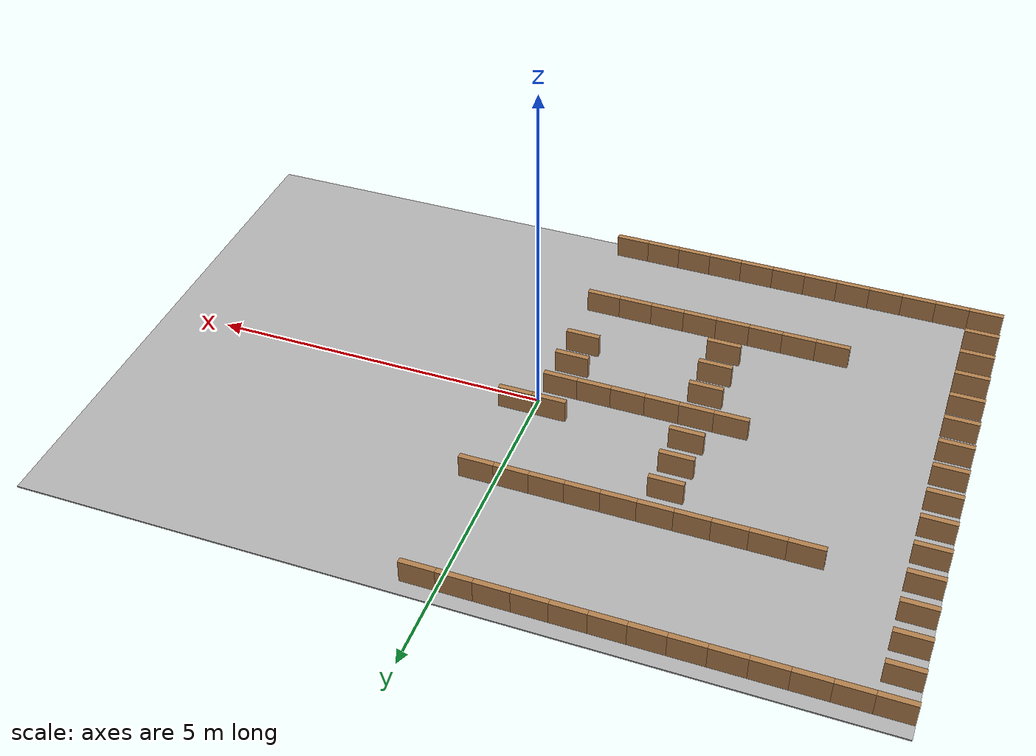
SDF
<sdf version="1.7">
 <world name="default">
  <model name="floor">
   <pose>0 0 -0.01 0 0 0</pose>
   <static>true</static>
   <link name="link">
    <collision name="col"><geometry><box><size>12.0 8.0 0.02</size></box></geometry></collision>
    <visual name="vis">
     <geometry><box><size>12.0 8.0 0.02</size></box></geometry>
     <material>
      <ambient>0.3 0.3 0.3 1</ambient>
      <diffuse>0.7 0.7 0.7 1</diffuse>
      <specular>0.1 0.1 0.1 1</specular>
     </material>
    </visual>
   </link>
  </model>
  <model name="wall_r0_c0">
   <pose>-5.75 3.75 0.175 0 0 0</pose>
   <static>true</static>
   <link name="link">
    <collision name="col"><geometry><box><size>0.5 0.08 0.35</size></box></geometry></collision>
    <visual name="vis">
     <geometry><box><size>0.5 0.08 0.35</size></box></geometry>
     <material>
      <ambient>0.3 0.2 0.1 1</ambient>
      <diffuse>0.7 0.5 0.3 1</diffuse>
      <specular>0.1 0.1 0.1 1</specular>
     </material>
    </visual>
   </link>
  </model>
  <model name="wall_r0_c1">
   <pose>-5.25 3.75 0.175 0 0 0</pose>
   <static>true</static>
   <link name="link">
    <collision name="col"><geometry><box><size>0.5 0.08 0.35</size></box></geometry></collision>
    <visual name="vis">
     <geometry><box><size>0.5 0.08 0.35</size></box></geometry>
     <material>
      <ambient>0.3 0.2 0.1 1</ambient>
      <diffuse>0.7 0.5 0.3 1</diffuse>
      <specular>0.1 0.1 0.1 1</specular>
     </material>
    </visual>
   </link>
  </model>
  <model name="wall_r0_c2">
   <pose>-4.75 3.75 0.175 0 0 0</pose>
   <static>true</static>
   <link name="link">
    <collision name="col"><geometry><box><size>0.5 0.08 0.35</size></box></geometry></collision>
    <visual name="vis">
     <geometry><box><size>0.5 0.08 0.35</size></box></geometry>
     <material>
      <ambient>0.3 0.2 0.1 1</ambient>
      <diffuse>0.7 0.5 0.3 1</diffuse>
      <specular>0.1 0.1 0.1 1</specular>
     </material>
    </visual>
   </link>
  </model>
  <model name="wall_r0_c3">
   <pose>-4.25 3.75 0.175 0 0 0</pose>
   <static>true</static>
   <link name="link">
    <collision name="col"><geometry><box><size>0.5 0.08 0.35</size></box></geometry></collision>
    <visual name="vis">
     <geometry><box><size>0.5 0.08 0.35</size></box></geometry>
     <material>
      <ambient>0.3 0.2 0.1 1</ambient>
      <diffuse>0.7 0.5 0.3 1</diffuse>
      <specular>0.1 0.1 0.1 1</specular>
     </material>
    </visual>
   </link>
  </model>
  <model name="wall_r0_c4">
   <pose>-3.75 3.75 0.175 0 0 0</pose>
   <static>true</static>
   <link name="link">
    <collision name="col"><geometry><box><size>0.5 0.08 0.35</size></box></geometry></collision>
    <visual name="vis">
     <geometry><box><size>0.5 0.08 0.35</size></box></geometry>
     <material>
      <ambient>0.3 0.2 0.1 1</ambient>
      <diffuse>0.7 0.5 0.3 1</diffuse>
      <specular>0.1 0.1 0.1 1</specular>
     </material>
    </visual>
   </link>
  </model>
  <model name="wall_r0_c5">
   <pose>-3.25 3.75 0.175 0 0 0</pose>
   <static>true</static>
   <link name="link">
    <collision name="col"><geometry><box><size>0.5 0.08 0.35</size></box></geometry></collision>
    <visual name="vis">
     <geometry><box><size>0.5 0.08 0.35</size></box></geometry>
     <material>
      <ambient>0.3 0.2 0.1 1</ambient>
      <diffuse>0.7 0.5 0.3 1</diffuse>
      <specular>0.1 0.1 0.1 1</specular>
     </material>
    </visual>
   </link>
  </model>
  <model name="wall_r0_c6">
   <pose>-2.75 3.75 0.175 0 0 0</pose>
   <static>true</static>
   <link name="link">
    <collision name="col"><geometry><box><size>0.5 0.08 0.35</size></box></geometry></collision>
    <visual name="vis">
     <geometry><box><size>0.5 0.08 0.35</size></box></geometry>
     <material>
      <ambient>0.3 0.2 0.1 1</ambient>
      <diffuse>0.7 0.5 0.3 1</diffuse>
      <specular>0.1 0.1 0.1 1</specular>
     </material>
    </visual>
   </link>
  </model>
  <model name="wall_r0_c7">
   <pose>-2.25 3.75 0.175 0 0 0</pose>
   <static>true</static>
   <link name="link">
    <collision name="col"><geometry><box><size>0.5 0.08 0.35</size></box></geometry></collision>
    <visual name="vis">
     <geometry><box><size>0.5 0.08 0.35</size></box></geometry>
     <material>
      <ambient>0.3 0.2 0.1 1</ambient>
      <diffuse>0.7 0.5 0.3 1</diffuse>
      <specular>0.1 0.1 0.1 1</specular>
     </material>
    </visual>
   </link>
  </model>
  <model name="wall_r0_c8">
   <pose>-1.75 3.75 0.175 0 0 0</pose>
   <static>true</static>
   <link name="link">
    <collision name="col"><geometry><box><size>0.5 0.08 0.35</size></box></geometry></collision>
    <visual name="vis">
     <geometry><box><size>0.5 0.08 0.35</size></box></geometry>
     <material>
      <ambient>0.3 0.2 0.1 1</ambient>
      <diffuse>0.7 0.5 0.3 1</diffuse>
      <specular>0.1 0.1 0.1 1</specular>
     </material>
    </visual>
   </link>
  </model>
  <model name="wall_r0_c9">
   <pose>-1.25 3.75 0.175 0 0 0</pose>
   <static>true</static>
   <link name="link">
    <collision name="col"><geometry><box><size>0.5 0.08 0.35</size></box></geometry></collision>
    <visual name="vis">
     <geometry><box><size>0.5 0.08 0.35</size></box></geometry>
     <material>
      <ambient>0.3 0.2 0.1 1</ambient>
      <diffuse>0.7 0.5 0.3 1</diffuse>
      <specular>0.1 0.1 0.1 1</specular>
     </material>
    </visual>
   </link>
  </model>
  <model name="wall_r0_c10">
   <pose>-0.75 3.75 0.175 0 0 0</pose>
   <static>true</static>
   <link name="link">
    <collision name="col"><geometry><box><size>0.5 0.08 0.35</size></box></geometry></collision>
    <visual name="vis">
     <geometry><box><size>0.5 0.08 0.35</size></box></geometry>
     <material>
      <ambient>0.3 0.2 0.1 1</ambient>
      <diffuse>0.7 0.5 0.3 1</diffuse>
      <specular>0.1 0.1 0.1 1</specular>
     </material>
    </visual>
   </link>
  </model>
  <model name="wall_r0_c11">
   <pose>-0.25 3.75 0.175 0 0 0</pose>
   <static>true</static>
   <link name="link">
    <collision name="col"><geometry><box><size>0.5 0.08 0.35</size></box></geometry></collision>
    <visual name="vis">
     <geometry><box><size>0.5 0.08 0.35</size></box></geometry>
     <material>
      <ambient>0.3 0.2 0.1 1</ambient>
      <diffuse>0.7 0.5 0.3 1</diffuse>
      <specular>0.1 0.1 0.1 1</specular>
     </material>
    </visual>
   </link>
  </model>
  <model name="wall_r0_c12">
   <pose>0.25 3.75 0.175 0 0 0</pose>
   <static>true</static>
   <link name="link">
    <collision name="col"><geometry><box><size>0.5 0.08 0.35</size></box></geometry></collision>
    <visual name="vis">
     <geometry><box><size>0.5 0.08 0.35</size></box></geometry>
     <material>
      <ambient>0.3 0.2 0.1 1</ambient>
      <diffuse>0.7 0.5 0.3 1</diffuse>
      <specular>0.1 0.1 0.1 1</specular>
     </material>
    </visual>
   </link>
  </model>
  <model name="wall_r1_c0">
   <pose>-5.75 3.25 0.175 0 0 0</pose>
   <static>true</static>
   <link name="link">
    <collision name="col"><geometry><box><size>0.5 0.08 0.35</size></box></geometry></collision>
    <visual name="vis">
     <geometry><box><size>0.5 0.08 0.35</size></box></geometry>
     <material>
      <ambient>0.3 0.2 0.1 1</ambient>
      <diffuse>0.7 0.5 0.3 1</diffuse>
      <specular>0.1 0.1 0.1 1</specular>
     </material>
    </visual>
   </link>
  </model>
  <model name="wall_r2_c0">
   <pose>-5.75 2.75 0.175 0 0 0</pose>
   <static>true</static>
   <link name="link">
    <collision name="col"><geometry><box><size>0.5 0.08 0.35</size></box></geometry></collision>
    <visual name="vis">
     <geometry><box><size>0.5 0.08 0.35</size></box></geometry>
     <material>
      <ambient>0.3 0.2 0.1 1</ambient>
      <diffuse>0.7 0.5 0.3 1</diffuse>
      <specular>0.1 0.1 0.1 1</specular>
     </material>
    </visual>
   </link>
  </model>
  <model name="wall_r3_c0">
   <pose>-5.75 2.25 0.175 0 0 0</pose>
   <static>true</static>
   <link name="link">
    <collision name="col"><geometry><box><size>0.5 0.08 0.35</size></box></geometry></collision>
    <visual name="vis">
     <geometry><box><size>0.5 0.08 0.35</size></box></geometry>
     <material>
      <ambient>0.3 0.2 0.1 1</ambient>
      <diffuse>0.7 0.5 0.3 1</diffuse>
      <specular>0.1 0.1 0.1 1</specular>
     </material>
    </visual>
   </link>
  </model>
  <model name="wall_r4_c0">
   <pose>-5.75 1.75 0.175 0 0 0</pose>
   <static>true</static>
   <link name="link">
    <collision name="col"><geometry><box><size>0.5 0.08 0.35</size></box></geometry></collision>
    <visual name="vis">
     <geometry><box><size>0.5 0.08 0.35</size></box></geometry>
     <material>
      <ambient>0.3 0.2 0.1 1</ambient>
      <diffuse>0.7 0.5 0.3 1</diffuse>
      <specular>0.1 0.1 0.1 1</specular>
     </material>
    </visual>
   </link>
  </model>
  <model name="wall_r4_c3">
   <pose>-4.25 1.75 0.175 0 0 0</pose>
   <static>true</static>
   <link name="link">
    <collision name="col"><geometry><box><size>0.5 0.08 0.35</size></box></geometry></collision>
    <visual name="vis">
     <geometry><box><size>0.5 0.08 0.35</size></box></geometry>
     <material>
      <ambient>0.3 0.2 0.1 1</ambient>
      <diffuse>0.7 0.5 0.3 1</diffuse>
      <specular>0.1 0.1 0.1 1</specular>
     </material>
    </visual>
   </link>
  </model>
  <model name="wall_r4_c4">
   <pose>-3.75 1.75 0.175 0 0 0</pose>
   <static>true</static>
   <link name="link">
    <collision name="col"><geometry><box><size>0.5 0.08 0.35</size></box></geometry></collision>
    <visual name="vis">
     <geometry><box><size>0.5 0.08 0.35</size></box></geometry>
     <material>
      <ambient>0.3 0.2 0.1 1</ambient>
      <diffuse>0.7 0.5 0.3 1</diffuse>
      <specular>0.1 0.1 0.1 1</specular>
     </material>
    </visual>
   </link>
  </model>
  <model name="wall_r4_c5">
   <pose>-3.25 1.75 0.175 0 0 0</pose>
   <static>true</static>
   <link name="link">
    <collision name="col"><geometry><box><size>0.5 0.08 0.35</size></box></geometry></collision>
    <visual name="vis">
     <geometry><box><size>0.5 0.08 0.35</size></box></geometry>
     <material>
      <ambient>0.3 0.2 0.1 1</ambient>
      <diffuse>0.7 0.5 0.3 1</diffuse>
      <specular>0.1 0.1 0.1 1</specular>
     </material>
    </visual>
   </link>
  </model>
  <model name="wall_r4_c6">
   <pose>-2.75 1.75 0.175 0 0 0</pose>
   <static>true</static>
   <link name="link">
    <collision name="col"><geometry><box><size>0.5 0.08 0.35</size></box></geometry></collision>
    <visual name="vis">
     <geometry><box><size>0.5 0.08 0.35</size></box></geometry>
     <material>
      <ambient>0.3 0.2 0.1 1</ambient>
      <diffuse>0.7 0.5 0.3 1</diffuse>
      <specular>0.1 0.1 0.1 1</specular>
     </material>
    </visual>
   </link>
  </model>
  <model name="wall_r4_c7">
   <pose>-2.25 1.75 0.175 0 0 0</pose>
   <static>true</static>
   <link name="link">
    <collision name="col"><geometry><box><size>0.5 0.08 0.35</size></box></geometry></collision>
    <visual name="vis">
     <geometry><box><size>0.5 0.08 0.35</size></box></geometry>
     <material>
      <ambient>0.3 0.2 0.1 1</ambient>
      <diffuse>0.7 0.5 0.3 1</diffuse>
      <specular>0.1 0.1 0.1 1</specular>
     </material>
    </visual>
   </link>
  </model>
  <model name="wall_r4_c8">
   <pose>-1.75 1.75 0.175 0 0 0</pose>
   <static>true</static>
   <link name="link">
    <collision name="col"><geometry><box><size>0.5 0.08 0.35</size></box></geometry></collision>
    <visual name="vis">
     <geometry><box><size>0.5 0.08 0.35</size></box></geometry>
     <material>
      <ambient>0.3 0.2 0.1 1</ambient>
      <diffuse>0.7 0.5 0.3 1</diffuse>
      <specular>0.1 0.1 0.1 1</specular>
     </material>
    </visual>
   </link>
  </model>
  <model name="wall_r4_c9">
   <pose>-1.25 1.75 0.175 0 0 0</pose>
   <static>true</static>
   <link name="link">
    <collision name="col"><geometry><box><size>0.5 0.08 0.35</size></box></geometry></collision>
    <visual name="vis">
     <geometry><box><size>0.5 0.08 0.35</size></box></geometry>
     <material>
      <ambient>0.3 0.2 0.1 1</ambient>
      <diffuse>0.7 0.5 0.3 1</diffuse>
      <specular>0.1 0.1 0.1 1</specular>
     </material>
    </visual>
   </link>
  </model>
  <model name="wall_r4_c10">
   <pose>-0.75 1.75 0.175 0 0 0</pose>
   <static>true</static>
   <link name="link">
    <collision name="col"><geometry><box><size>0.5 0.08 0.35</size></box></geometry></collision>
    <visual name="vis">
     <geometry><box><size>0.5 0.08 0.35</size></box></geometry>
     <material>
      <ambient>0.3 0.2 0.1 1</ambient>
      <diffuse>0.7 0.5 0.3 1</diffuse>
      <specular>0.1 0.1 0.1 1</specular>
     </material>
    </visual>
   </link>
  </model>
  <model name="wall_r4_c11">
   <pose>-0.25 1.75 0.175 0 0 0</pose>
   <static>true</static>
   <link name="link">
    <collision name="col"><geometry><box><size>0.5 0.08 0.35</size></box></geometry></collision>
    <visual name="vis">
     <geometry><box><size>0.5 0.08 0.35</size></box></geometry>
     <material>
      <ambient>0.3 0.2 0.1 1</ambient>
      <diffuse>0.7 0.5 0.3 1</diffuse>
      <specular>0.1 0.1 0.1 1</specular>
     </material>
    </visual>
   </link>
  </model>
  <model name="wall_r4_c12">
   <pose>0.25 1.75 0.175 0 0 0</pose>
   <static>true</static>
   <link name="link">
    <collision name="col"><geometry><box><size>0.5 0.08 0.35</size></box></geometry></collision>
    <visual name="vis">
     <geometry><box><size>0.5 0.08 0.35</size></box></geometry>
     <material>
      <ambient>0.3 0.2 0.1 1</ambient>
      <diffuse>0.7 0.5 0.3 1</diffuse>
      <specular>0.1 0.1 0.1 1</specular>
     </material>
    </visual>
   </link>
  </model>
  <model name="wall_r5_c0">
   <pose>-5.75 1.25 0.175 0 0 0</pose>
   <static>true</static>
   <link name="link">
    <collision name="col"><geometry><box><size>0.5 0.08 0.35</size></box></geometry></collision>
    <visual name="vis">
     <geometry><box><size>0.5 0.08 0.35</size></box></geometry>
     <material>
      <ambient>0.3 0.2 0.1 1</ambient>
      <diffuse>0.7 0.5 0.3 1</diffuse>
      <specular>0.1 0.1 0.1 1</specular>
     </material>
    </visual>
   </link>
  </model>
  <model name="wall_r5_c7">
   <pose>-2.25 1.25 0.175 0 0 0</pose>
   <static>true</static>
   <link name="link">
    <collision name="col"><geometry><box><size>0.5 0.08 0.35</size></box></geometry></collision>
    <visual name="vis">
     <geometry><box><size>0.5 0.08 0.35</size></box></geometry>
     <material>
      <ambient>0.3 0.2 0.1 1</ambient>
      <diffuse>0.7 0.5 0.3 1</diffuse>
      <specular>0.1 0.1 0.1 1</specular>
     </material>
    </visual>
   </link>
  </model>
  <model name="wall_r6_c0">
   <pose>-5.75 0.75 0.175 0 0 0</pose>
   <static>true</static>
   <link name="link">
    <collision name="col"><geometry><box><size>0.5 0.08 0.35</size></box></geometry></collision>
    <visual name="vis">
     <geometry><box><size>0.5 0.08 0.35</size></box></geometry>
     <material>
      <ambient>0.3 0.2 0.1 1</ambient>
      <diffuse>0.7 0.5 0.3 1</diffuse>
      <specular>0.1 0.1 0.1 1</specular>
     </material>
    </visual>
   </link>
  </model>
  <model name="wall_r6_c7">
   <pose>-2.25 0.75 0.175 0 0 0</pose>
   <static>true</static>
   <link name="link">
    <collision name="col"><geometry><box><size>0.5 0.08 0.35</size></box></geometry></collision>
    <visual name="vis">
     <geometry><box><size>0.5 0.08 0.35</size></box></geometry>
     <material>
      <ambient>0.3 0.2 0.1 1</ambient>
      <diffuse>0.7 0.5 0.3 1</diffuse>
      <specular>0.1 0.1 0.1 1</specular>
     </material>
    </visual>
   </link>
  </model>
  <model name="wall_r7_c0">
   <pose>-5.75 0.25 0.175 0 0 0</pose>
   <static>true</static>
   <link name="link">
    <collision name="col"><geometry><box><size>0.5 0.08 0.35</size></box></geometry></collision>
    <visual name="vis">
     <geometry><box><size>0.5 0.08 0.35</size></box></geometry>
     <material>
      <ambient>0.3 0.2 0.1 1</ambient>
      <diffuse>0.7 0.5 0.3 1</diffuse>
      <specular>0.1 0.1 0.1 1</specular>
     </material>
    </visual>
   </link>
  </model>
  <model name="wall_r7_c7">
   <pose>-2.25 0.25 0.175 0 0 0</pose>
   <static>true</static>
   <link name="link">
    <collision name="col"><geometry><box><size>0.5 0.08 0.35</size></box></geometry></collision>
    <visual name="vis">
     <geometry><box><size>0.5 0.08 0.35</size></box></geometry>
     <material>
      <ambient>0.3 0.2 0.1 1</ambient>
      <diffuse>0.7 0.5 0.3 1</diffuse>
      <specular>0.1 0.1 0.1 1</specular>
     </material>
    </visual>
   </link>
  </model>
  <model name="wall_r7_c11">
   <pose>-0.25 0.25 0.175 0 0 0</pose>
   <static>true</static>
   <link name="link">
    <collision name="col"><geometry><box><size>0.5 0.08 0.35</size></box></geometry></collision>
    <visual name="vis">
     <geometry><box><size>0.5 0.08 0.35</size></box></geometry>
     <material>
      <ambient>0.3 0.2 0.1 1</ambient>
      <diffuse>0.7 0.5 0.3 1</diffuse>
      <specular>0.1 0.1 0.1 1</specular>
     </material>
    </visual>
   </link>
  </model>
  <model name="wall_r7_c12">
   <pose>0.25 0.25 0.175 0 0 0</pose>
   <static>true</static>
   <link name="link">
    <collision name="col"><geometry><box><size>0.5 0.08 0.35</size></box></geometry></collision>
    <visual name="vis">
     <geometry><box><size>0.5 0.08 0.35</size></box></geometry>
     <material>
      <ambient>0.3 0.2 0.1 1</ambient>
      <diffuse>0.7 0.5 0.3 1</diffuse>
      <specular>0.1 0.1 0.1 1</specular>
     </material>
    </visual>
   </link>
  </model>
  <model name="wall_r8_c0">
   <pose>-5.75 -0.25 0.175 0 0 0</pose>
   <static>true</static>
   <link name="link">
    <collision name="col"><geometry><box><size>0.5 0.08 0.35</size></box></geometry></collision>
    <visual name="vis">
     <geometry><box><size>0.5 0.08 0.35</size></box></geometry>
     <material>
      <ambient>0.3 0.2 0.1 1</ambient>
      <diffuse>0.7 0.5 0.3 1</diffuse>
      <specular>0.1 0.1 0.1 1</specular>
     </material>
    </visual>
   </link>
  </model>
  <model name="wall_r8_c6">
   <pose>-2.75 -0.25 0.175 0 0 0</pose>
   <static>true</static>
   <link name="link">
    <collision name="col"><geometry><box><size>0.5 0.08 0.35</size></box></geometry></collision>
    <visual name="vis">
     <geometry><box><size>0.5 0.08 0.35</size></box></geometry>
     <material>
      <ambient>0.3 0.2 0.1 1</ambient>
      <diffuse>0.7 0.5 0.3 1</diffuse>
      <specular>0.1 0.1 0.1 1</specular>
     </material>
    </visual>
   </link>
  </model>
  <model name="wall_r8_c7">
   <pose>-2.25 -0.25 0.175 0 0 0</pose>
   <static>true</static>
   <link name="link">
    <collision name="col"><geometry><box><size>0.5 0.08 0.35</size></box></geometry></collision>
    <visual name="vis">
     <geometry><box><size>0.5 0.08 0.35</size></box></geometry>
     <material>
      <ambient>0.3 0.2 0.1 1</ambient>
      <diffuse>0.7 0.5 0.3 1</diffuse>
      <specular>0.1 0.1 0.1 1</specular>
     </material>
    </visual>
   </link>
  </model>
  <model name="wall_r8_c8">
   <pose>-1.75 -0.25 0.175 0 0 0</pose>
   <static>true</static>
   <link name="link">
    <collision name="col"><geometry><box><size>0.5 0.08 0.35</size></box></geometry></collision>
    <visual name="vis">
     <geometry><box><size>0.5 0.08 0.35</size></box></geometry>
     <material>
      <ambient>0.3 0.2 0.1 1</ambient>
      <diffuse>0.7 0.5 0.3 1</diffuse>
      <specular>0.1 0.1 0.1 1</specular>
     </material>
    </visual>
   </link>
  </model>
  <model name="wall_r8_c9">
   <pose>-1.25 -0.25 0.175 0 0 0</pose>
   <static>true</static>
   <link name="link">
    <collision name="col"><geometry><box><size>0.5 0.08 0.35</size></box></geometry></collision>
    <visual name="vis">
     <geometry><box><size>0.5 0.08 0.35</size></box></geometry>
     <material>
      <ambient>0.3 0.2 0.1 1</ambient>
      <diffuse>0.7 0.5 0.3 1</diffuse>
      <specular>0.1 0.1 0.1 1</specular>
     </material>
    </visual>
   </link>
  </model>
  <model name="wall_r8_c10">
   <pose>-0.75 -0.25 0.175 0 0 0</pose>
   <static>true</static>
   <link name="link">
    <collision name="col"><geometry><box><size>0.5 0.08 0.35</size></box></geometry></collision>
    <visual name="vis">
     <geometry><box><size>0.5 0.08 0.35</size></box></geometry>
     <material>
      <ambient>0.3 0.2 0.1 1</ambient>
      <diffuse>0.7 0.5 0.3 1</diffuse>
      <specular>0.1 0.1 0.1 1</specular>
     </material>
    </visual>
   </link>
  </model>
  <model name="wall_r8_c11">
   <pose>-0.25 -0.25 0.175 0 0 0</pose>
   <static>true</static>
   <link name="link">
    <collision name="col"><geometry><box><size>0.5 0.08 0.35</size></box></geometry></collision>
    <visual name="vis">
     <geometry><box><size>0.5 0.08 0.35</size></box></geometry>
     <material>
      <ambient>0.3 0.2 0.1 1</ambient>
      <diffuse>0.7 0.5 0.3 1</diffuse>
      <specular>0.1 0.1 0.1 1</specular>
     </material>
    </visual>
   </link>
  </model>
  <model name="wall_r9_c0">
   <pose>-5.75 -0.75 0.175 0 0 0</pose>
   <static>true</static>
   <link name="link">
    <collision name="col"><geometry><box><size>0.5 0.08 0.35</size></box></geometry></collision>
    <visual name="vis">
     <geometry><box><size>0.5 0.08 0.35</size></box></geometry>
     <material>
      <ambient>0.3 0.2 0.1 1</ambient>
      <diffuse>0.7 0.5 0.3 1</diffuse>
      <specular>0.1 0.1 0.1 1</specular>
     </material>
    </visual>
   </link>
  </model>
  <model name="wall_r9_c7">
   <pose>-2.25 -0.75 0.175 0 0 0</pose>
   <static>true</static>
   <link name="link">
    <collision name="col"><geometry><box><size>0.5 0.08 0.35</size></box></geometry></collision>
    <visual name="vis">
     <geometry><box><size>0.5 0.08 0.35</size></box></geometry>
     <material>
      <ambient>0.3 0.2 0.1 1</ambient>
      <diffuse>0.7 0.5 0.3 1</diffuse>
      <specular>0.1 0.1 0.1 1</specular>
     </material>
    </visual>
   </link>
  </model>
  <model name="wall_r9_c11">
   <pose>-0.25 -0.75 0.175 0 0 0</pose>
   <static>true</static>
   <link name="link">
    <collision name="col"><geometry><box><size>0.5 0.08 0.35</size></box></geometry></collision>
    <visual name="vis">
     <geometry><box><size>0.5 0.08 0.35</size></box></geometry>
     <material>
      <ambient>0.3 0.2 0.1 1</ambient>
      <diffuse>0.7 0.5 0.3 1</diffuse>
      <specular>0.1 0.1 0.1 1</specular>
     </material>
    </visual>
   </link>
  </model>
  <model name="wall_r10_c0">
   <pose>-5.75 -1.25 0.175 0 0 0</pose>
   <static>true</static>
   <link name="link">
    <collision name="col"><geometry><box><size>0.5 0.08 0.35</size></box></geometry></collision>
    <visual name="vis">
     <geometry><box><size>0.5 0.08 0.35</size></box></geometry>
     <material>
      <ambient>0.3 0.2 0.1 1</ambient>
      <diffuse>0.7 0.5 0.3 1</diffuse>
      <specular>0.1 0.1 0.1 1</specular>
     </material>
    </visual>
   </link>
  </model>
  <model name="wall_r10_c7">
   <pose>-2.25 -1.25 0.175 0 0 0</pose>
   <static>true</static>
   <link name="link">
    <collision name="col"><geometry><box><size>0.5 0.08 0.35</size></box></geometry></collision>
    <visual name="vis">
     <geometry><box><size>0.5 0.08 0.35</size></box></geometry>
     <material>
      <ambient>0.3 0.2 0.1 1</ambient>
      <diffuse>0.7 0.5 0.3 1</diffuse>
      <specular>0.1 0.1 0.1 1</specular>
     </material>
    </visual>
   </link>
  </model>
  <model name="wall_r10_c11">
   <pose>-0.25 -1.25 0.175 0 0 0</pose>
   <static>true</static>
   <link name="link">
    <collision name="col"><geometry><box><size>0.5 0.08 0.35</size></box></geometry></collision>
    <visual name="vis">
     <geometry><box><size>0.5 0.08 0.35</size></box></geometry>
     <material>
      <ambient>0.3 0.2 0.1 1</ambient>
      <diffuse>0.7 0.5 0.3 1</diffuse>
      <specular>0.1 0.1 0.1 1</specular>
     </material>
    </visual>
   </link>
  </model>
  <model name="wall_r11_c0">
   <pose>-5.75 -1.75 0.175 0 0 0</pose>
   <static>true</static>
   <link name="link">
    <collision name="col"><geometry><box><size>0.5 0.08 0.35</size></box></geometry></collision>
    <visual name="vis">
     <geometry><box><size>0.5 0.08 0.35</size></box></geometry>
     <material>
      <ambient>0.3 0.2 0.1 1</ambient>
      <diffuse>0.7 0.5 0.3 1</diffuse>
      <specular>0.1 0.1 0.1 1</specular>
     </material>
    </visual>
   </link>
  </model>
  <model name="wall_r11_c7">
   <pose>-2.25 -1.75 0.175 0 0 0</pose>
   <static>true</static>
   <link name="link">
    <collision name="col"><geometry><box><size>0.5 0.08 0.35</size></box></geometry></collision>
    <visual name="vis">
     <geometry><box><size>0.5 0.08 0.35</size></box></geometry>
     <material>
      <ambient>0.3 0.2 0.1 1</ambient>
      <diffuse>0.7 0.5 0.3 1</diffuse>
      <specular>0.1 0.1 0.1 1</specular>
     </material>
    </visual>
   </link>
  </model>
  <model name="wall_r12_c0">
   <pose>-5.75 -2.25 0.175 0 0 0</pose>
   <static>true</static>
   <link name="link">
    <collision name="col"><geometry><box><size>0.5 0.08 0.35</size></box></geometry></collision>
    <visual name="vis">
     <geometry><box><size>0.5 0.08 0.35</size></box></geometry>
     <material>
      <ambient>0.3 0.2 0.1 1</ambient>
      <diffuse>0.7 0.5 0.3 1</diffuse>
      <specular>0.1 0.1 0.1 1</specular>
     </material>
    </visual>
   </link>
  </model>
  <model name="wall_r12_c4">
   <pose>-3.75 -2.25 0.175 0 0 0</pose>
   <static>true</static>
   <link name="link">
    <collision name="col"><geometry><box><size>0.5 0.08 0.35</size></box></geometry></collision>
    <visual name="vis">
     <geometry><box><size>0.5 0.08 0.35</size></box></geometry>
     <material>
      <ambient>0.3 0.2 0.1 1</ambient>
      <diffuse>0.7 0.5 0.3 1</diffuse>
      <specular>0.1 0.1 0.1 1</specular>
     </material>
    </visual>
   </link>
  </model>
  <model name="wall_r12_c5">
   <pose>-3.25 -2.25 0.175 0 0 0</pose>
   <static>true</static>
   <link name="link">
    <collision name="col"><geometry><box><size>0.5 0.08 0.35</size></box></geometry></collision>
    <visual name="vis">
     <geometry><box><size>0.5 0.08 0.35</size></box></geometry>
     <material>
      <ambient>0.3 0.2 0.1 1</ambient>
      <diffuse>0.7 0.5 0.3 1</diffuse>
      <specular>0.1 0.1 0.1 1</specular>
     </material>
    </visual>
   </link>
  </model>
  <model name="wall_r12_c6">
   <pose>-2.75 -2.25 0.175 0 0 0</pose>
   <static>true</static>
   <link name="link">
    <collision name="col"><geometry><box><size>0.5 0.08 0.35</size></box></geometry></collision>
    <visual name="vis">
     <geometry><box><size>0.5 0.08 0.35</size></box></geometry>
     <material>
      <ambient>0.3 0.2 0.1 1</ambient>
      <diffuse>0.7 0.5 0.3 1</diffuse>
      <specular>0.1 0.1 0.1 1</specular>
     </material>
    </visual>
   </link>
  </model>
  <model name="wall_r12_c7">
   <pose>-2.25 -2.25 0.175 0 0 0</pose>
   <static>true</static>
   <link name="link">
    <collision name="col"><geometry><box><size>0.5 0.08 0.35</size></box></geometry></collision>
    <visual name="vis">
     <geometry><box><size>0.5 0.08 0.35</size></box></geometry>
     <material>
      <ambient>0.3 0.2 0.1 1</ambient>
      <diffuse>0.7 0.5 0.3 1</diffuse>
      <specular>0.1 0.1 0.1 1</specular>
     </material>
    </visual>
   </link>
  </model>
  <model name="wall_r12_c8">
   <pose>-1.75 -2.25 0.175 0 0 0</pose>
   <static>true</static>
   <link name="link">
    <collision name="col"><geometry><box><size>0.5 0.08 0.35</size></box></geometry></collision>
    <visual name="vis">
     <geometry><box><size>0.5 0.08 0.35</size></box></geometry>
     <material>
      <ambient>0.3 0.2 0.1 1</ambient>
      <diffuse>0.7 0.5 0.3 1</diffuse>
      <specular>0.1 0.1 0.1 1</specular>
     </material>
    </visual>
   </link>
  </model>
  <model name="wall_r12_c9">
   <pose>-1.25 -2.25 0.175 0 0 0</pose>
   <static>true</static>
   <link name="link">
    <collision name="col"><geometry><box><size>0.5 0.08 0.35</size></box></geometry></collision>
    <visual name="vis">
     <geometry><box><size>0.5 0.08 0.35</size></box></geometry>
     <material>
      <ambient>0.3 0.2 0.1 1</ambient>
      <diffuse>0.7 0.5 0.3 1</diffuse>
      <specular>0.1 0.1 0.1 1</specular>
     </material>
    </visual>
   </link>
  </model>
  <model name="wall_r12_c10">
   <pose>-0.75 -2.25 0.175 0 0 0</pose>
   <static>true</static>
   <link name="link">
    <collision name="col"><geometry><box><size>0.5 0.08 0.35</size></box></geometry></collision>
    <visual name="vis">
     <geometry><box><size>0.5 0.08 0.35</size></box></geometry>
     <material>
      <ambient>0.3 0.2 0.1 1</ambient>
      <diffuse>0.7 0.5 0.3 1</diffuse>
      <specular>0.1 0.1 0.1 1</specular>
     </material>
    </visual>
   </link>
  </model>
  <model name="wall_r12_c11">
   <pose>-0.25 -2.25 0.175 0 0 0</pose>
   <static>true</static>
   <link name="link">
    <collision name="col"><geometry><box><size>0.5 0.08 0.35</size></box></geometry></collision>
    <visual name="vis">
     <geometry><box><size>0.5 0.08 0.35</size></box></geometry>
     <material>
      <ambient>0.3 0.2 0.1 1</ambient>
      <diffuse>0.7 0.5 0.3 1</diffuse>
      <specular>0.1 0.1 0.1 1</specular>
     </material>
    </visual>
   </link>
  </model>
  <model name="wall_r13_c0">
   <pose>-5.75 -2.75 0.175 0 0 0</pose>
   <static>true</static>
   <link name="link">
    <collision name="col"><geometry><box><size>0.5 0.08 0.35</size></box></geometry></collision>
    <visual name="vis">
     <geometry><box><size>0.5 0.08 0.35</size></box></geometry>
     <material>
      <ambient>0.3 0.2 0.1 1</ambient>
      <diffuse>0.7 0.5 0.3 1</diffuse>
      <specular>0.1 0.1 0.1 1</specular>
     </material>
    </visual>
   </link>
  </model>
  <model name="wall_r14_c0">
   <pose>-5.75 -3.25 0.175 0 0 0</pose>
   <static>true</static>
   <link name="link">
    <collision name="col"><geometry><box><size>0.5 0.08 0.35</size></box></geometry></collision>
    <visual name="vis">
     <geometry><box><size>0.5 0.08 0.35</size></box></geometry>
     <material>
      <ambient>0.3 0.2 0.1 1</ambient>
      <diffuse>0.7 0.5 0.3 1</diffuse>
      <specular>0.1 0.1 0.1 1</specular>
     </material>
    </visual>
   </link>
  </model>
  <model name="wall_r15_c0">
   <pose>-5.75 -3.75 0.175 0 0 0</pose>
   <static>true</static>
   <link name="link">
    <collision name="col"><geometry><box><size>0.5 0.08 0.35</size></box></geometry></collision>
    <visual name="vis">
     <geometry><box><size>0.5 0.08 0.35</size></box></geometry>
     <material>
      <ambient>0.3 0.2 0.1 1</ambient>
      <diffuse>0.7 0.5 0.3 1</diffuse>
      <specular>0.1 0.1 0.1 1</specular>
     </material>
    </visual>
   </link>
  </model>
  <model name="wall_r15_c1">
   <pose>-5.25 -3.75 0.175 0 0 0</pose>
   <static>true</static>
   <link name="link">
    <collision name="col"><geometry><box><size>0.5 0.08 0.35</size></box></geometry></collision>
    <visual name="vis">
     <geometry><box><size>0.5 0.08 0.35</size></box></geometry>
     <material>
      <ambient>0.3 0.2 0.1 1</ambient>
      <diffuse>0.7 0.5 0.3 1</diffuse>
      <specular>0.1 0.1 0.1 1</specular>
     </material>
    </visual>
   </link>
  </model>
  <model name="wall_r15_c2">
   <pose>-4.75 -3.75 0.175 0 0 0</pose>
   <static>true</static>
   <link name="link">
    <collision name="col"><geometry><box><size>0.5 0.08 0.35</size></box></geometry></collision>
    <visual name="vis">
     <geometry><box><size>0.5 0.08 0.35</size></box></geometry>
     <material>
      <ambient>0.3 0.2 0.1 1</ambient>
      <diffuse>0.7 0.5 0.3 1</diffuse>
      <specular>0.1 0.1 0.1 1</specular>
     </material>
    </visual>
   </link>
  </model>
  <model name="wall_r15_c3">
   <pose>-4.25 -3.75 0.175 0 0 0</pose>
   <static>true</static>
   <link name="link">
    <collision name="col"><geometry><box><size>0.5 0.08 0.35</size></box></geometry></collision>
    <visual name="vis">
     <geometry><box><size>0.5 0.08 0.35</size></box></geometry>
     <material>
      <ambient>0.3 0.2 0.1 1</ambient>
      <diffuse>0.7 0.5 0.3 1</diffuse>
      <specular>0.1 0.1 0.1 1</specular>
     </material>
    </visual>
   </link>
  </model>
  <model name="wall_r15_c4">
   <pose>-3.75 -3.75 0.175 0 0 0</pose>
   <static>true</static>
   <link name="link">
    <collision name="col"><geometry><box><size>0.5 0.08 0.35</size></box></geometry></collision>
    <visual name="vis">
     <geometry><box><size>0.5 0.08 0.35</size></box></geometry>
     <material>
      <ambient>0.3 0.2 0.1 1</ambient>
      <diffuse>0.7 0.5 0.3 1</diffuse>
      <specular>0.1 0.1 0.1 1</specular>
     </material>
    </visual>
   </link>
  </model>
  <model name="wall_r15_c5">
   <pose>-3.25 -3.75 0.175 0 0 0</pose>
   <static>true</static>
   <link name="link">
    <collision name="col"><geometry><box><size>0.5 0.08 0.35</size></box></geometry></collision>
    <visual name="vis">
     <geometry><box><size>0.5 0.08 0.35</size></box></geometry>
     <material>
      <ambient>0.3 0.2 0.1 1</ambient>
      <diffuse>0.7 0.5 0.3 1</diffuse>
      <specular>0.1 0.1 0.1 1</specular>
     </material>
    </visual>
   </link>
  </model>
  <model name="wall_r15_c6">
   <pose>-2.75 -3.75 0.175 0 0 0</pose>
   <static>true</static>
   <link name="link">
    <collision name="col"><geometry><box><size>0.5 0.08 0.35</size></box></geometry></collision>
    <visual name="vis">
     <geometry><box><size>0.5 0.08 0.35</size></box></geometry>
     <material>
      <ambient>0.3 0.2 0.1 1</ambient>
      <diffuse>0.7 0.5 0.3 1</diffuse>
      <specular>0.1 0.1 0.1 1</specular>
     </material>
    </visual>
   </link>
  </model>
  <model name="wall_r15_c7">
   <pose>-2.25 -3.75 0.175 0 0 0</pose>
   <static>true</static>
   <link name="link">
    <collision name="col"><geometry><box><size>0.5 0.08 0.35</size></box></geometry></collision>
    <visual name="vis">
     <geometry><box><size>0.5 0.08 0.35</size></box></geometry>
     <material>
      <ambient>0.3 0.2 0.1 1</ambient>
      <diffuse>0.7 0.5 0.3 1</diffuse>
      <specular>0.1 0.1 0.1 1</specular>
     </material>
    </visual>
   </link>
  </model>
  <model name="wall_r15_c8">
   <pose>-1.75 -3.75 0.175 0 0 0</pose>
   <static>true</static>
   <link name="link">
    <collision name="col"><geometry><box><size>0.5 0.08 0.35</size></box></geometry></collision>
    <visual name="vis">
     <geometry><box><size>0.5 0.08 0.35</size></box></geometry>
     <material>
      <ambient>0.3 0.2 0.1 1</ambient>
      <diffuse>0.7 0.5 0.3 1</diffuse>
      <specular>0.1 0.1 0.1 1</specular>
     </material>
    </visual>
   </link>
  </model>
  <model name="wall_r15_c9">
   <pose>-1.25 -3.75 0.175 0 0 0</pose>
   <static>true</static>
   <link name="link">
    <collision name="col"><geometry><box><size>0.5 0.08 0.35</size></box></geometry></collision>
    <visual name="vis">
     <geometry><box><size>0.5 0.08 0.35</size></box></geometry>
     <material>
      <ambient>0.3 0.2 0.1 1</ambient>
      <diffuse>0.7 0.5 0.3 1</diffuse>
      <specular>0.1 0.1 0.1 1</specular>
     </material>
    </visual>
   </link>
  </model>
  <model name="wall_r15_c10">
   <pose>-0.75 -3.75 0.175 0 0 0</pose>
   <static>true</static>
   <link name="link">
    <collision name="col"><geometry><box><size>0.5 0.08 0.35</size></box></geometry></collision>
    <visual name="vis">
     <geometry><box><size>0.5 0.08 0.35</size></box></geometry>
     <material>
      <ambient>0.3 0.2 0.1 1</ambient>
      <diffuse>0.7 0.5 0.3 1</diffuse>
      <specular>0.1 0.1 0.1 1</specular>
     </material>
    </visual>
   </link>
  </model>
  <model name="wall_r15_c11">
   <pose>-0.25 -3.75 0.175 0 0 0</pose>
   <static>true</static>
   <link name="link">
    <collision name="col"><geometry><box><size>0.5 0.08 0.35</size></box></geometry></collision>
    <visual name="vis">
     <geometry><box><size>0.5 0.08 0.35</size></box></geometry>
     <material>
      <ambient>0.3 0.2 0.1 1</ambient>
      <diffuse>0.7 0.5 0.3 1</diffuse>
      <specular>0.1 0.1 0.1 1</specular>
     </material>
    </visual>
   </link>
  </model>
 </world>
</sdf>
